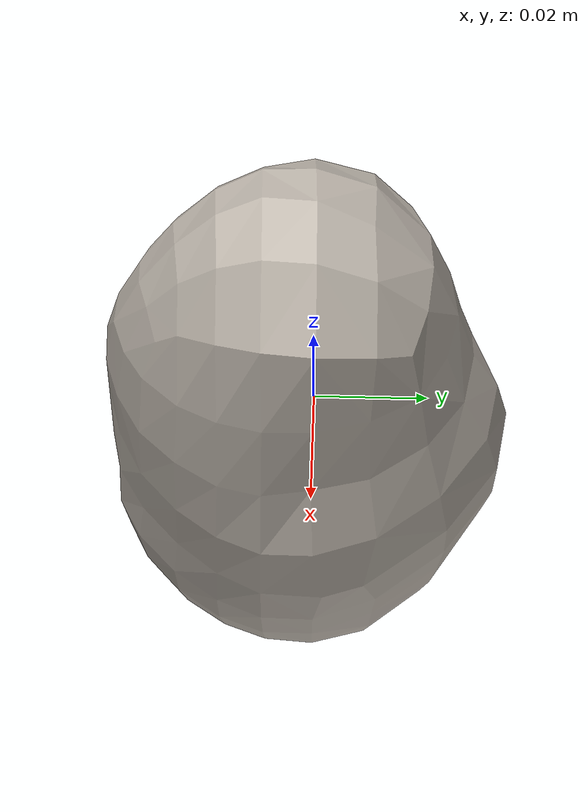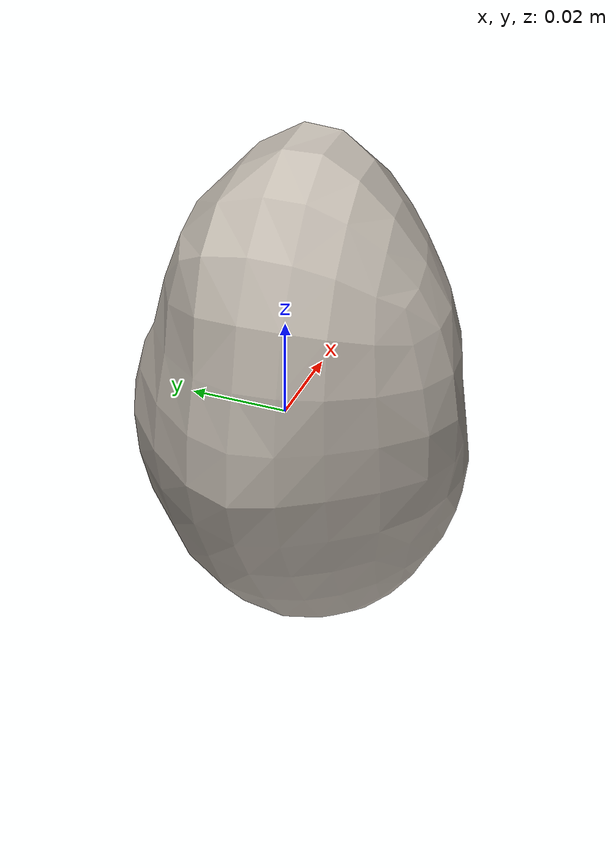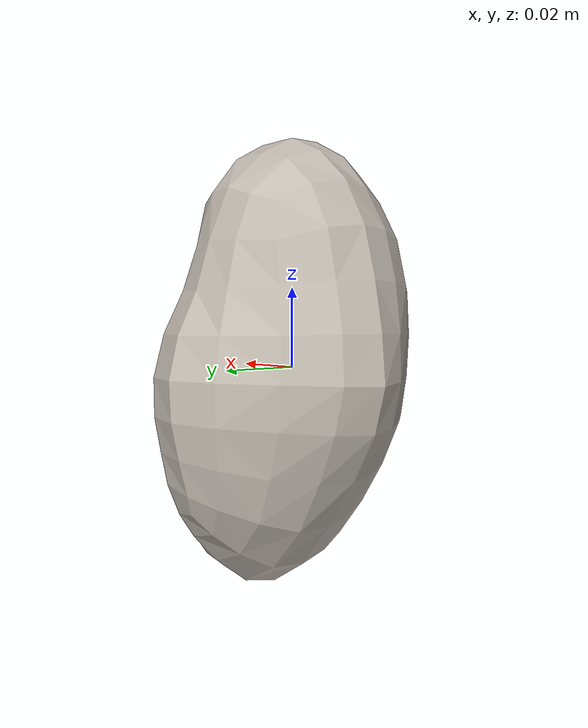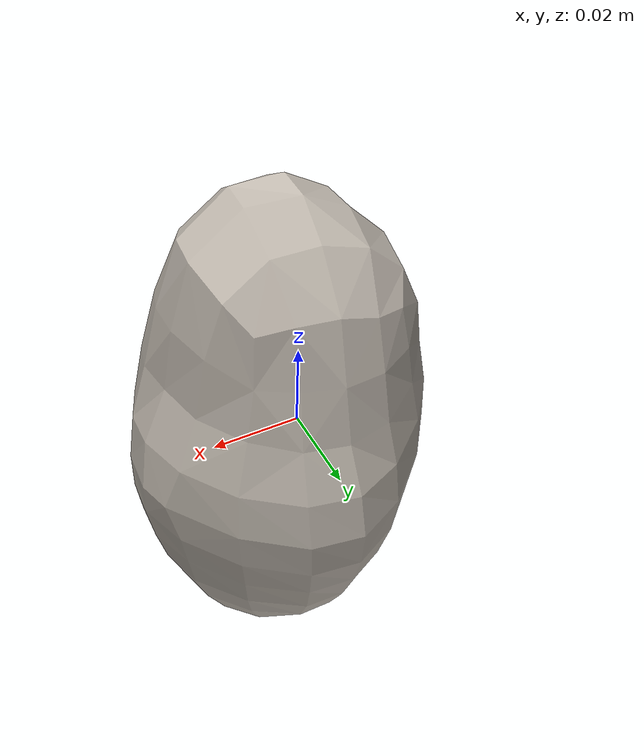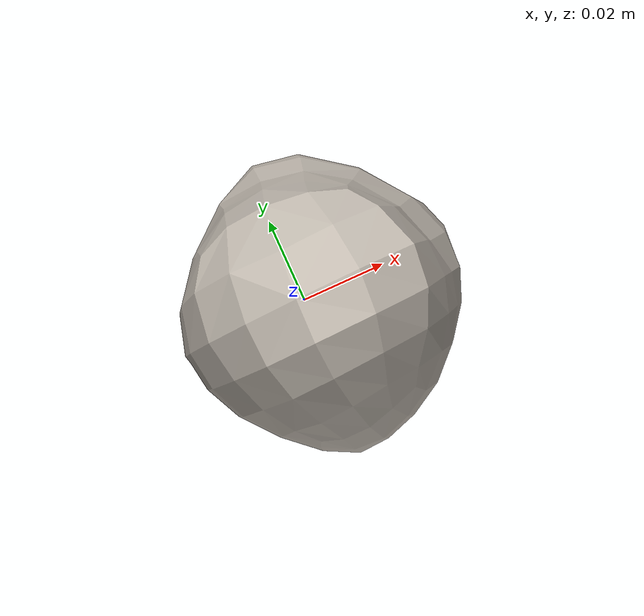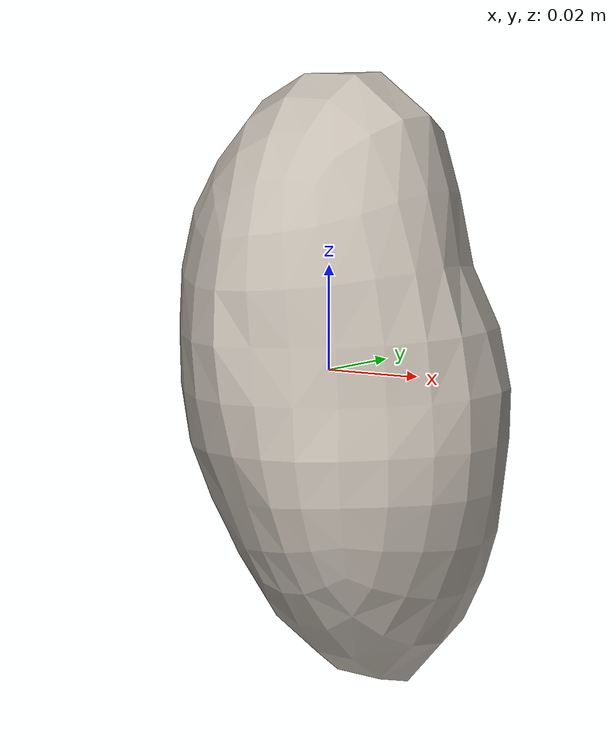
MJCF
<mujoco model="Potato_6">
  <compiler autolimits="true" boundmass="0.01" angle="radian"/>
  <default>
    <default class="/">
      <default class="__VISUAL_MJT__">
        <geom contype="0" conaffinity="0" group="0"/>
      </default>
      <default class="__STRUCTURAL_MJT__">
        <geom contype="8" conaffinity="15" group="4" friction="0.90000000000000002 0.90000000000000002 0.001" solref="0.025000000000000001 1" solimp="0.998 0.998 0.001"/>
      </default>
      <default class="__DYNAMIC_MJT__">
        <geom contype="1" conaffinity="15" group="4" friction="0.90000000000000002 0.90000000000000002 0.001" solref="0.025000000000000001 1" solimp="0.998 0.998 0.001"/>
      </default>
    </default>
  </default>
  <asset>
    <texture name="Potato1_Mat1" type="2d" file="Potato1_AlbedoTransparency.png"/>
    <material name="material_Potato1_Mat1" class="/" texture="Potato1_Mat1" specular="0.5" shininess="0.5" rgba="1 1 1 1"/>
    <mesh name="Potato_6_potato_a6" class="/" file="Potato_6_potato_a6/Potato_6_potato_a6.obj" scale="1 1 1"/>
  </asset>
  <worldbody>
    <body name="Potato_6">
      <joint name="Potato_6_free" class="/" type="free" pos="0 0 0" axis="0 0 1" stiffness="0" range="0 0" armature="0" damping="0.10000000000000001" frictionloss="0"/>
      <body name="Potato_6_potato_a6" pos="0.002 0.0033600000000000001 -0.0061799999999999997" quat="1 0 0 0">
        <geom name="Potato_6_potato_a6" class="__VISUAL_MJT__" type="mesh" material="material_Potato1_Mat1" shellinertia="true" mesh="Potato_6_potato_a6"/>
        <geom name="Potato_6_PrimitiveCollider_0" class="__DYNAMIC_MJT__" type="capsule" size="0.034453932195901871 0.024741105735301971" rgba="0 1 0 1" pos="0.0020040273666381836 -0.0033605657517910004 0.0061792121268808842" quat="1.4751396609986736e-06 0.99999999999891198 0 0"/>
      </body>
    </body>
  </worldbody>
</mujoco>
